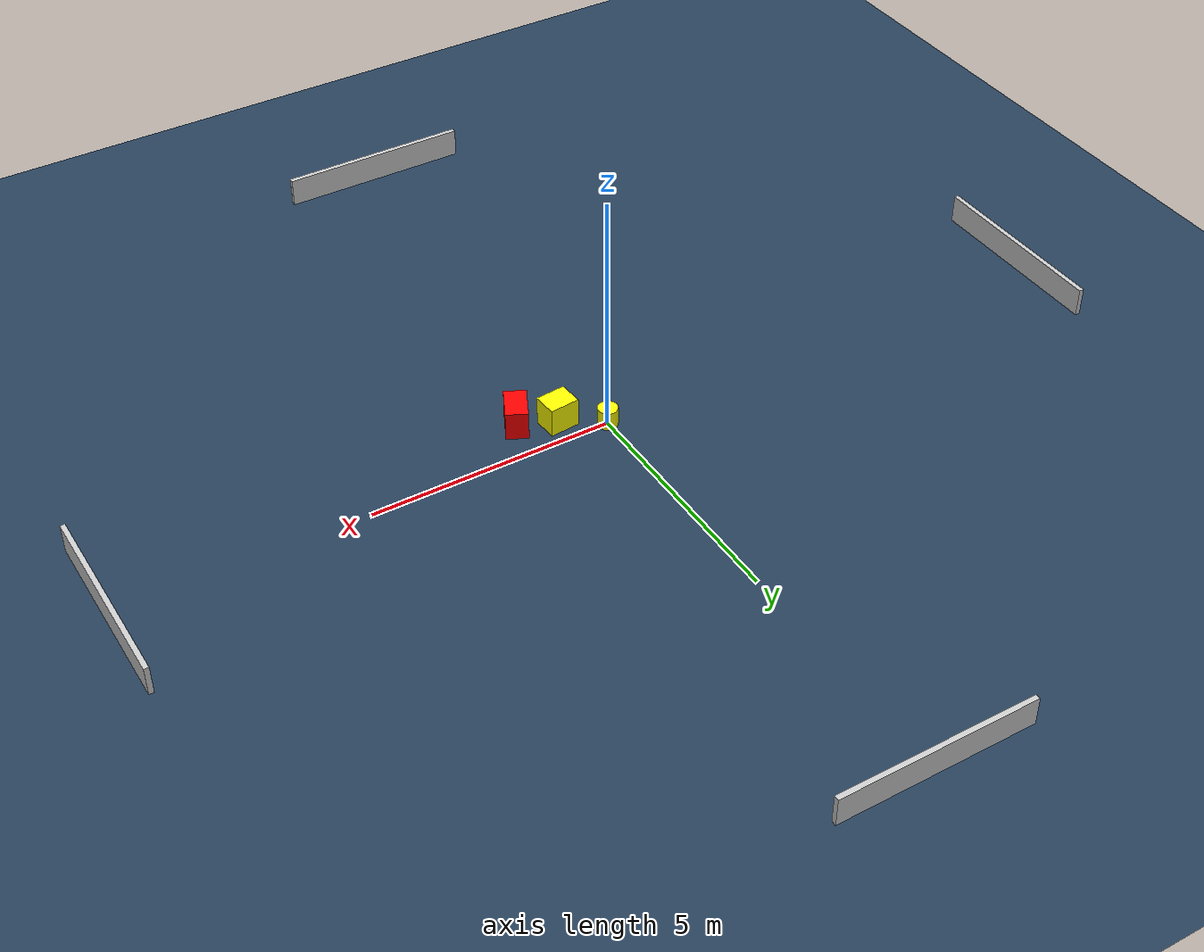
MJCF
<?xml version="1.0" ?>
<mujoco model="generated_environment">
  <option timestep="0.01" integrator="RK4" cone="elliptic"/>
  <default>
    <geom density="1"/>
  </default>
  <asset>
    <texture builtin="gradient" height="3072" name="skybox" rgb1="0.3 0.5 0.7" rgb2="0 0 0" type="skybox" width="512"/>
    <texture builtin="checker" height="300" name="groundplane" rgb1="0.2 0.3 0.4" rgb2="0.1 0.2 0.3" type="2d" width="300"/>
    <material name="groundplane" reflectance="0.2" texrepeat="5 5" texture="groundplane"/>
  </asset>
  <worldbody>
    <light dir="0 0 -1" directional="true" pos="0 0 1.5"/>
    <geom condim="3" friction="0.5 0.005 0.001" material="groundplane" name="floor" pos="0 0 0" size="0 0 0.05" type="plane"/>
    <body name="walls">
      <geom name="wall_1" condim="4" pos="-10.0 0.0 0.3" rgba="0.800000011920929 0.800000011920929 0.800000011920929 1.0" size="0.05 2.0 0.3" type="box"/>
      <geom name="wall_2" condim="4" pos="10.0 0.0 0.3" rgba="0.800000011920929 0.800000011920929 0.800000011920929 1.0" size="0.05 2.0 0.3" type="box"/>
      <geom name="wall_3" condim="4" pos="0.0 -10.0 0.3" rgba="0.800000011920929 0.800000011920929 0.800000011920929 1.0" size="2.0 0.05 0.3" type="box"/>
      <geom name="wall_4" condim="4" pos="0.0 10.0 0.3" rgba="0.800000011920929 0.800000011920929 0.800000011920929 1.0" size="2.0 0.05 0.3" type="box"/>
    </body>
    <body name="robot">
      <joint name="joint_x" type="slide" pos="0 0 0" axis="1 0 0"/>
      <joint name="joint_y" type="slide" pos="0 0 0" axis="0 1 0"/>
      <geom name="robot" type="cylinder" pos="0.0 0.0 0.2" size="0.2 0.2 0.0" mass="5.0" friction="1.0 0.005 0.0001" condim="4" rgba="1.0 1.0 0.0 1.0"/>
    </body>
    <body name="obstacle_1_movable">
      <geom name="obstacle_1_movable" condim="4" pos="0.8085980647132913 -0.5041913364974107 0.3" euler="0 0 94.77101133552915" friction="0.0 0.005 0.001" rgba="1.0 1.0 0.0 1.0" size="0.2485606094728951 0.30592310634050796 0.3" type="box" mass="0.1"/>
      <joint type="free"/>
    </body>
    <body name="obstacle_2_static">
      <geom name="obstacle_2_static" condim="4" pos="1.5345323535398483 -0.8235022157821557 0.3" euler="0 0 63.80659197953617" friction="0.0 0.005 0.001" rgba="1.0 0.0 0.0 1.0" size="0.35597460674009873 0.2223480709324747 0.3" type="box"/>
    </body>
  </worldbody>
  <actuator>
    <motor name="actuator_x" joint="joint_x" gear="1" ctrlrange="-1 1"/>
    <motor name="actuator_y" joint="joint_y" gear="1" ctrlrange="-1 1"/>
  </actuator>
</mujoco>
